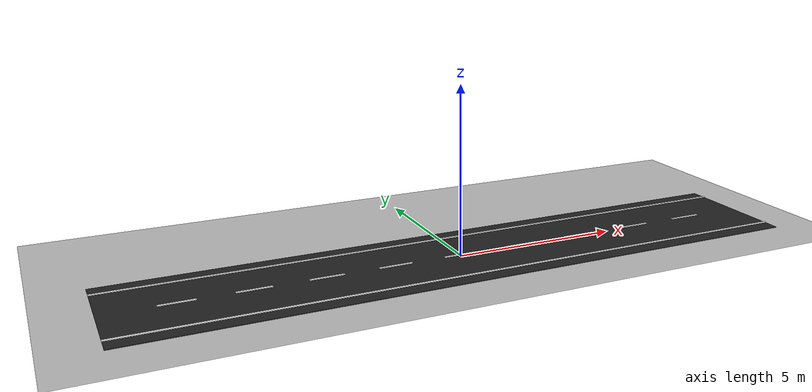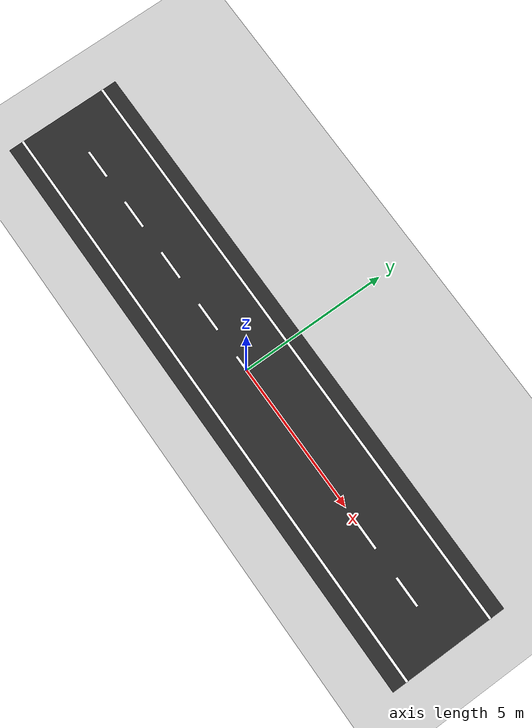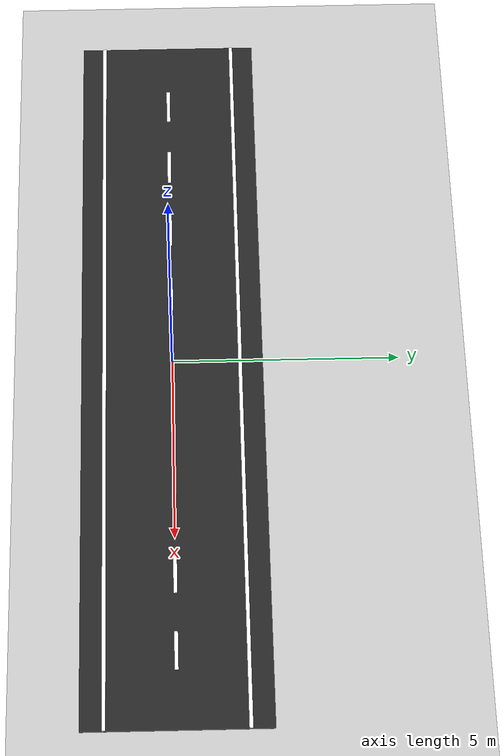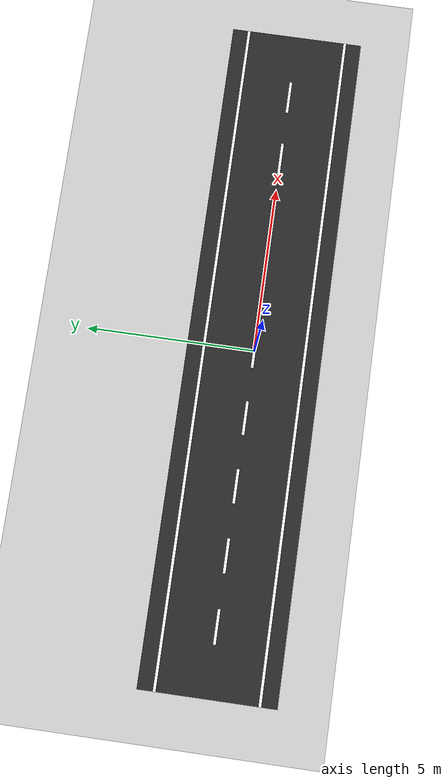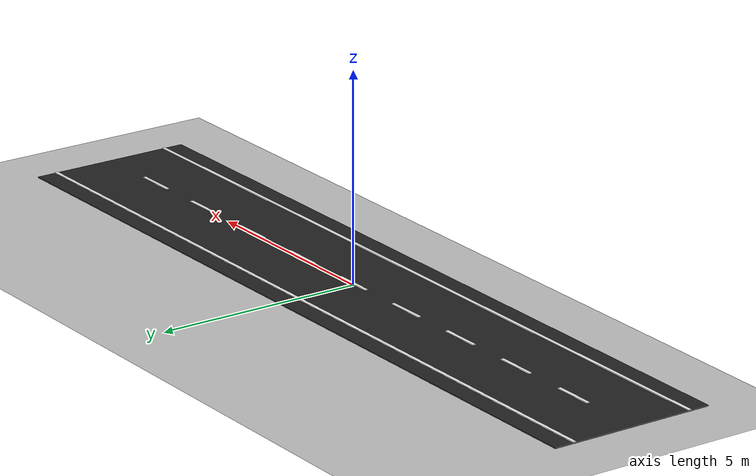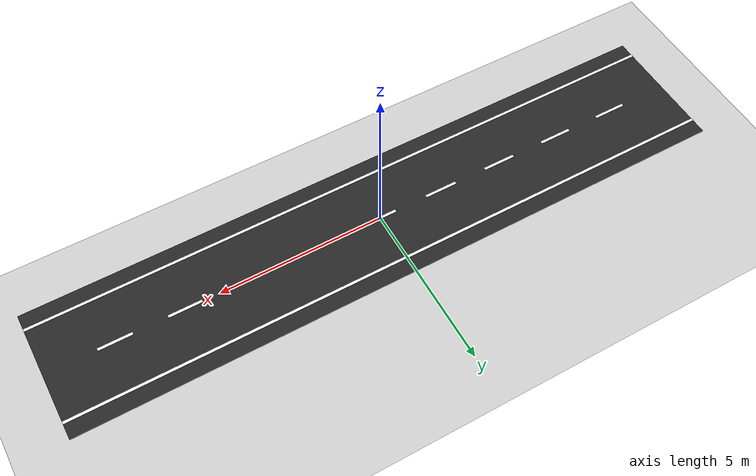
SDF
<?xml version="1.0"?>

<sdf version="1.6">

    <world name="track_world">

        <!-- Gazebo ortamındaki ışık -->
        <include>
            <uri>model://sun</uri>
        </include>

        <!-- Sonsuz gibi görünen genel zemin -->
        <include>
            <uri>model://ground_plane</uri>
        </include>

        <!-- Koyu renkli yol -->
        <model name="road">

            <static>true</static>

            <link name="road_link">

                <visual name="road_visual">
                    <pose>0 0 0.01 0 0 0</pose>

                    <geometry>
                        <box>
                            <size>20 4 0.02</size>
                        </box>
                    </geometry>

                    <material>
                        <ambient>0.15 0.15 0.15 1</ambient>
                        <diffuse>0.15 0.15 0.15 1</diffuse>
                    </material>
                </visual>

                <collision name="road_collision">
                    <pose>0 0 0.01 0 0 0</pose>

                    <geometry>
                        <box>
                            <size>20 4 0.02</size>
                        </box>
                    </geometry>
                </collision>

            </link>
        </model>

        <!-- Sol beyaz çizgi -->
        <model name="left_lane_line">

            <static>true</static>

            <pose>0 1.5 0.03 0 0 0</pose>

            <link name="line_link">

                <visual name="line_visual">

                    <geometry>
                        <box>
                            <size>20 0.08 0.02</size>
                        </box>
                    </geometry>

                    <material>
                        <ambient>1 1 1 1</ambient>
                        <diffuse>1 1 1 1</diffuse>
                    </material>

                </visual>

            </link>
        </model>

        <!-- Sağ beyaz çizgi -->
        <model name="right_lane_line">

            <static>true</static>

            <pose>0 -1.5 0.03 0 0 0</pose>

            <link name="line_link">

                <visual name="line_visual">

                    <geometry>
                        <box>
                            <size>20 0.08 0.02</size>
                        </box>
                    </geometry>

                    <material>
                        <ambient>1 1 1 1</ambient>
                        <diffuse>1 1 1 1</diffuse>
                    </material>

                </visual>

            </link>
        </model>

                <!-- Yolun ortasındaki kesik beyaz çizgiler -->
        <model name="center_lane_lines">

            <!-- Şeritler hareket etmesin -->
            <static>true</static>

            <link name="center_lines_link">

                <!-- 1. çizgi -->
                <visual name="center_line_1">
                    <pose>-8 0 0.04 0 0 0</pose>

                    <geometry>
                        <box>
                            <size>1.0 0.08 0.02</size>
                        </box>
                    </geometry>

                    <material>
                        <ambient>1 1 1 1</ambient>
                        <diffuse>1 1 1 1</diffuse>
                    </material>
                </visual>

                <!-- 2. çizgi -->
                <visual name="center_line_2">
                    <pose>-6 0 0.04 0 0 0</pose>

                    <geometry>
                        <box>
                            <size>1.0 0.08 0.02</size>
                        </box>
                    </geometry>

                    <material>
                        <ambient>1 1 1 1</ambient>
                        <diffuse>1 1 1 1</diffuse>
                    </material>
                </visual>

                <!-- 3. çizgi -->
                <visual name="center_line_3">
                    <pose>-4 0 0.04 0 0 0</pose>

                    <geometry>
                        <box>
                            <size>1.0 0.08 0.02</size>
                        </box>
                    </geometry>

                    <material>
                        <ambient>1 1 1 1</ambient>
                        <diffuse>1 1 1 1</diffuse>
                    </material>
                </visual>

                <!-- 4. çizgi -->
                <visual name="center_line_4">
                    <pose>-2 0 0.04 0 0 0</pose>

                    <geometry>
                        <box>
                            <size>1.0 0.08 0.02</size>
                        </box>
                    </geometry>

                    <material>
                        <ambient>1 1 1 1</ambient>
                        <diffuse>1 1 1 1</diffuse>
                    </material>
                </visual>

                <!-- 5. çizgi -->
                <visual name="center_line_5">
                    <pose>0 0 0.04 0 0 0</pose>

                    <geometry>
                        <box>
                            <size>1.0 0.08 0.02</size>
                        </box>
                    </geometry>

                    <material>
                        <ambient>1 1 1 1</ambient>
                        <diffuse>1 1 1 1</diffuse>
                    </material>
                </visual>

                <!-- 6. çizgi -->
                <visual name="center_line_6">
                    <pose>2 0 0.04 0 0 0</pose>

                    <geometry>
                        <box>
                            <size>1.0 0.08 0.02</size>
                        </box>
                    </geometry>

                    <material>
                        <ambient>1 1 1 1</ambient>
                        <diffuse>1 1 1 1</diffuse>
                    </material>
                </visual>

                <!-- 7. çizgi -->
                <visual name="center_line_7">
                    <pose>4 0 0.04 0 0 0</pose>

                    <geometry>
                        <box>
                            <size>1.0 0.08 0.02</size>
                        </box>
                    </geometry>

                    <material>
                        <ambient>1 1 1 1</ambient>
                        <diffuse>1 1 1 1</diffuse>
                    </material>
                </visual>

                <!-- 8. çizgi -->
                <visual name="center_line_8">
                    <pose>6 0 0.04 0 0 0</pose>

                    <geometry>
                        <box>
                            <size>1.0 0.08 0.02</size>
                        </box>
                    </geometry>

                    <material>
                        <ambient>1 1 1 1</ambient>
                        <diffuse>1 1 1 1</diffuse>
                    </material>
                </visual>

                <!-- 9. çizgi -->
                <visual name="center_line_9">
                    <pose>8 0 0.04 0 0 0</pose>

                    <geometry>
                        <box>
                            <size>1.0 0.08 0.02</size>
                        </box>
                    </geometry>

                    <material>
                        <ambient>1 1 1 1</ambient>
                        <diffuse>1 1 1 1</diffuse>
                    </material>
                </visual>

            </link>

        </model>

    </world>

</sdf>
